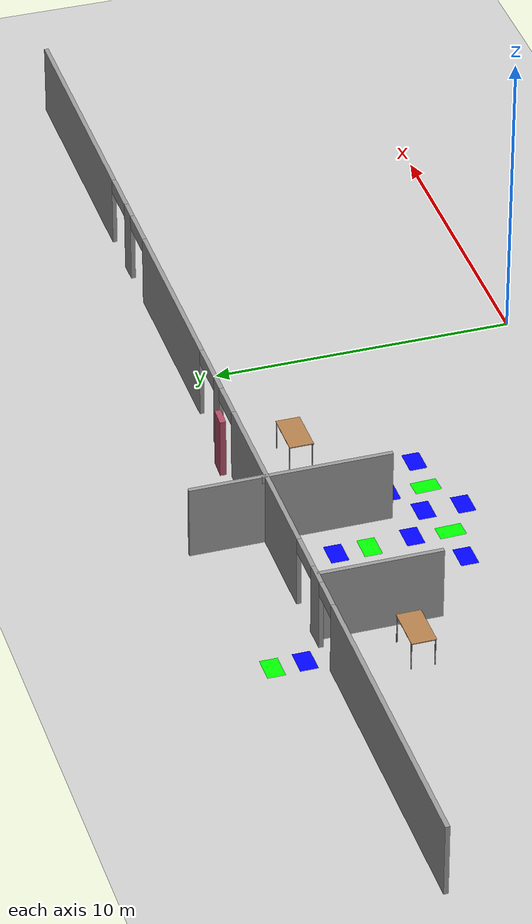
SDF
<sdf version="1.6">
 <world name="default">
  <model name="ground_plane">
   <pose>0 0 0.001 0 -0 0</pose>
   <static>1</static>
   <link name="link">
    <collision name="collision">
     <geometry><plane><normal>0 0 1</normal><size>100 100</size></plane></geometry>
     <surface><friction><ode><mu>100</mu><mu2>50</mu2></ode></friction></surface>
    </collision>
    <visual name="visual">
     <cast_shadows>0</cast_shadows>
     <geometry><plane><normal>0 0 1</normal><size>100 100</size></plane></geometry>
     <material>
      <script><uri>file://media/materials/scripts/gazebo.material</uri><name>Gazebo/Grey</name></script>
     </material>
    </visual>
   </link>
  </model>
  <model name="table_2">
   <static>1</static>
   <link name="link">
    <collision name="surface">
     <pose>0 0 1 0 -0 0</pose>
     <geometry><box><size>1.5 0.8 0.03</size></box></geometry>
     <surface><friction><ode><mu>0.6</mu><mu2>0.6</mu2></ode></friction></surface>
    </collision>
    <visual name="visual1">
     <pose>0 0 1 0 -0 0</pose>
     <geometry><box><size>1.5 0.8 0.03</size></box></geometry>
     <material>
      <script><uri>file://media/materials/scripts/gazebo.material</uri><name>Gazebo/Wood</name></script>
     </material>
    </visual>
    <collision name="front_left_leg">
     <pose>0.68 0.38 0.5 0 -0 0</pose>
     <geometry><cylinder><radius>0.02</radius><length>1</length></cylinder></geometry>
    </collision>
    <visual name="front_left_leg">
     <pose>0.68 0.38 0.5 0 -0 0</pose>
     <geometry><cylinder><radius>0.02</radius><length>1</length></cylinder></geometry>
     <material>
      <script><uri>file://media/materials/scripts/gazebo.material</uri><name>Gazebo/Grey</name></script>
     </material>
    </visual>
    <collision name="front_right_leg">
     <pose>0.68 -0.38 0.5 0 -0 0</pose>
     <geometry><cylinder><radius>0.02</radius><length>1</length></cylinder></geometry>
    </collision>
    <visual name="front_right_leg">
     <pose>0.68 -0.38 0.5 0 -0 0</pose>
     <geometry><cylinder><radius>0.02</radius><length>1</length></cylinder></geometry>
     <material>
      <script><uri>file://media/materials/scripts/gazebo.material</uri><name>Gazebo/Grey</name></script>
     </material>
    </visual>
    <collision name="back_right_leg">
     <pose>-0.68 -0.38 0.5 0 -0 0</pose>
     <geometry><cylinder><radius>0.02</radius><length>1</length></cylinder></geometry>
    </collision>
    <visual name="back_right_leg">
     <pose>-0.68 -0.38 0.5 0 -0 0</pose>
     <geometry><cylinder><radius>0.02</radius><length>1</length></cylinder></geometry>
     <material>
      <script><uri>file://media/materials/scripts/gazebo.material</uri><name>Gazebo/Grey</name></script>
     </material>
    </visual>
    <collision name="back_left_leg">
     <pose>-0.68 0.38 0.5 0 -0 0</pose>
     <geometry><cylinder><radius>0.02</radius><length>1</length></cylinder></geometry>
    </collision>
    <visual name="back_left_leg">
     <pose>-0.68 0.38 0.5 0 -0 0</pose>
     <geometry><cylinder><radius>0.02</radius><length>1</length></cylinder></geometry>
     <material>
      <script><uri>file://media/materials/scripts/gazebo.material</uri><name>Gazebo/Grey</name></script>
     </material>
    </visual>
   </link>
   <pose>-15.5399 8.3596 0.001 0 -0 0</pose>
  </model>
  <model name="table_4">
   <static>1</static>
   <link name="link">
    <collision name="surface">
     <pose>0 0 1 0 -0 0</pose>
     <geometry><box><size>1.5 0.8 0.03</size></box></geometry>
     <surface><friction><ode><mu>0.6</mu><mu2>0.6</mu2></ode></friction></surface>
    </collision>
    <visual name="visual1">
     <pose>0 0 1 0 -0 0</pose>
     <geometry><box><size>1.5 0.8 0.03</size></box></geometry>
     <material>
      <script><uri>file://media/materials/scripts/gazebo.material</uri><name>Gazebo/Wood</name></script>
     </material>
    </visual>
    <collision name="front_left_leg">
     <pose>0.68 0.38 0.5 0 -0 0</pose>
     <geometry><cylinder><radius>0.02</radius><length>1</length></cylinder></geometry>
    </collision>
    <visual name="front_left_leg">
     <pose>0.68 0.38 0.5 0 -0 0</pose>
     <geometry><cylinder><radius>0.02</radius><length>1</length></cylinder></geometry>
     <material>
      <script><uri>file://media/materials/scripts/gazebo.material</uri><name>Gazebo/Grey</name></script>
     </material>
    </visual>
    <collision name="front_right_leg">
     <pose>0.68 -0.38 0.5 0 -0 0</pose>
     <geometry><cylinder><radius>0.02</radius><length>1</length></cylinder></geometry>
    </collision>
    <visual name="front_right_leg">
     <pose>0.68 -0.38 0.5 0 -0 0</pose>
     <geometry><cylinder><radius>0.02</radius><length>1</length></cylinder></geometry>
     <material>
      <script><uri>file://media/materials/scripts/gazebo.material</uri><name>Gazebo/Grey</name></script>
     </material>
    </visual>
    <collision name="back_right_leg">
     <pose>-0.68 -0.38 0.5 0 -0 0</pose>
     <geometry><cylinder><radius>0.02</radius><length>1</length></cylinder></geometry>
    </collision>
    <visual name="back_right_leg">
     <pose>-0.68 -0.38 0.5 0 -0 0</pose>
     <geometry><cylinder><radius>0.02</radius><length>1</length></cylinder></geometry>
     <material>
      <script><uri>file://media/materials/scripts/gazebo.material</uri><name>Gazebo/Grey</name></script>
     </material>
    </visual>
    <collision name="back_left_leg">
     <pose>-0.68 0.38 0.5 0 -0 0</pose>
     <geometry><cylinder><radius>0.02</radius><length>1</length></cylinder></geometry>
    </collision>
    <visual name="back_left_leg">
     <pose>-0.68 0.38 0.5 0 -0 0</pose>
     <geometry><cylinder><radius>0.02</radius><length>1</length></cylinder></geometry>
     <material>
      <script><uri>file://media/materials/scripts/gazebo.material</uri><name>Gazebo/Grey</name></script>
     </material>
    </visual>
   </link>
   <pose>-5.01771 8.89432 0.001 0 -0 0</pose>
  </model>
  <model name="doorInside_10">
   <link name="link">
    <pose>0.712274 -0.220649 0.216958 0 -0 0</pose>
    <inertial>
     <mass>0.840612</mass>
     <inertia>
      <ixx>0.178476</ixx>
      <ixy>0</ixy>
      <ixz>0</ixz>
      <iyy>0.140406</iyy>
      <iyz>0</iyz>
      <izz>0.102032</izz>
     </inertia>
     <pose>0 0 0.001 0 -0 0</pose>
    </inertial>
    <visual name="visual">
     <geometry><box><size>0.675678 0.198843 2.05986</size></box></geometry>
     <material>
      <script><name>Gazebo/Grey</name><uri>file://media/materials/scripts/gazebo.material</uri></script>
      <ambient>0.7 0.3 0.4 1</ambient>
      <diffuse>0.7 0.7 0.7 1</diffuse>
      <specular>0.01 0.01 0.01 1</specular>
      <emissive>1 0 0 1</emissive>
      <shader type="vertex"><normal_map>__default__</normal_map></shader>
      <lighting>0</lighting>
     </material>
     <pose>0 0 0.001 0 -0 0</pose>
    </visual>
    <collision name="collision">
     <pose>0 0 0.001 0 -0 0</pose>
     <geometry><box><size>0.675678 0.198843 2.05986</size></box></geometry>
     <surface>
      <friction>
       <ode><mu>1</mu><mu2>1</mu2><fdir1>0 0 0</fdir1><slip1>0</slip1><slip2>0</slip2></ode>
       <torsional>
        <coefficient>1</coefficient>
        <patch_radius>0</patch_radius>
        <surface_radius>0</surface_radius>
        <use_patch_radius>1</use_patch_radius>
        <ode><slip>0</slip></ode>
       </torsional>
      </friction>
      <bounce><restitution_coefficient>0</restitution_coefficient><threshold>1e+06</threshold></bounce>
      <contact>
       <collide_without_contact>0</collide_without_contact>
       <collide_without_contact_bitmask>1</collide_without_contact_bitmask>
       <collide_bitmask>1</collide_bitmask>
       <ode>
        <soft_cfm>0</soft_cfm>
        <soft_erp>0.2</soft_erp>
        <kp>1e+13</kp>
        <kd>1</kd>
        <max_vel>0.01</max_vel>
        <min_depth>0</min_depth>
       </ode>
       <bullet>
        <split_impulse>1</split_impulse>
        <split_impulse_penetration_threshold>-0.01</split_impulse_penetration_threshold>
        <soft_cfm>0</soft_cfm>
        <soft_erp>0.2</soft_erp>
        <kp>1e+13</kp>
        <kd>1</kd>
       </bullet>
      </contact>
     </surface>
    </collision>
   </link>
   <static>0</static>
   <pose>-5.58746 11.5531 0.81197 -0 -2e-06 -0.041448</pose>
  </model>
  <model name="corridor_16">
   <link name="link">
    <pose>0 0 0.001 0 -0 0</pose>
    <inertial>
     <mass>0.0352517</mass>
     <inertia>
      <ixx>0.00099707</ixx>
      <ixy>0</ixy>
      <ixz>0</ixz>
      <iyy>0.00220147</iyy>
      <iyz>0</iyz>
      <izz>0.0031692</izz>
     </inertia>
     <pose>0 0 0.001 0 -0 0</pose>
    </inertial>
    <visual name="visual">
     <geometry><box><size>0.862743 0.578289 1e-06</size></box></geometry>
     <material>
      <script><name>Gazebo/Grey</name><uri>file://media/materials/scripts/gazebo.material</uri></script>
      <ambient>0 1 0 1</ambient>
      <diffuse>0 1 0 1</diffuse>
      <specular>0 1 0 1</specular>
      <emissive>0 1 0 1</emissive>
      <shader type="vertex"><normal_map>__default__</normal_map></shader>
     </material>
     <pose>0 0 0.001 0 -0 0</pose>
    </visual>
    <collision name="collision">
     <pose>0 0 0.001 0 -0 0</pose>
     <geometry><box><size>0.862743 0.578289 0.000477</size></box></geometry>
     <surface>
      <friction>
       <ode><mu>1</mu><mu2>1</mu2><fdir1>0 0 0</fdir1><slip1>0</slip1><slip2>0</slip2></ode>
       <torsional>
        <coefficient>1</coefficient>
        <patch_radius>0</patch_radius>
        <surface_radius>0</surface_radius>
        <use_patch_radius>1</use_patch_radius>
        <ode><slip>0</slip></ode>
       </torsional>
      </friction>
      <bounce><restitution_coefficient>0</restitution_coefficient><threshold>1e+06</threshold></bounce>
      <contact>
       <collide_without_contact>0</collide_without_contact>
       <collide_without_contact_bitmask>1</collide_without_contact_bitmask>
       <collide_bitmask>1</collide_bitmask>
       <ode>
        <soft_cfm>0</soft_cfm>
        <soft_erp>0.2</soft_erp>
        <kp>1e+13</kp>
        <kd>1</kd>
        <max_vel>0.01</max_vel>
        <min_depth>0</min_depth>
       </ode>
       <bullet>
        <split_impulse>1</split_impulse>
        <split_impulse_penetration_threshold>-0.01</split_impulse_penetration_threshold>
        <soft_cfm>0</soft_cfm>
        <soft_erp>0.2</soft_erp>
        <kp>1e+13</kp>
        <kd>1</kd>
       </bullet>
      </contact>
     </surface>
    </collision>
   </link>
   <static>1</static>
   <pose>-7.66214 5.39521 0 0 0 -1.5307</pose>
  </model>
  <model name="intersection_26">
   <link name="link">
    <pose>0 0 0.001 0 -0 0</pose>
    <inertial>
     <mass>0.0352517</mass>
     <inertia>
      <ixx>0.000997067</ixx>
      <ixy>0</ixy>
      <ixz>0</ixz>
      <iyy>0.00220147</iyy>
      <iyz>0</iyz>
      <izz>0.0031692</izz>
     </inertia>
     <pose>0 0 0.001 0 -0 0</pose>
    </inertial>
    <visual name="visual">
     <geometry><box><size>0.862743 0.578289 1e-06</size></box></geometry>
     <material>
      <script><name>Gazebo/Grey</name><uri>file://media/materials/scripts/gazebo.material</uri></script>
      <ambient>0 0 1 1</ambient>
      <diffuse>0 0 1 1</diffuse>
      <specular>0 0 1 1</specular>
      <emissive>0 0 1 1</emissive>
      <shader type="vertex"><normal_map>__default__</normal_map></shader>
     </material>
     <pose>0 0 0.001 0 -0 0</pose>
    </visual>
    <collision name="collision">
     <pose>0 0 0.001 0 -0 0</pose>
     <geometry><box><size>0.862743 0.578289 0.000477</size></box></geometry>
     <surface>
      <friction>
       <ode><mu>1</mu><mu2>1</mu2><fdir1>0 0 0</fdir1><slip1>0</slip1><slip2>0</slip2></ode>
       <torsional>
        <coefficient>1</coefficient>
        <patch_radius>0</patch_radius>
        <surface_radius>0</surface_radius>
        <use_patch_radius>1</use_patch_radius>
        <ode><slip>0</slip></ode>
       </torsional>
      </friction>
      <bounce><restitution_coefficient>0</restitution_coefficient><threshold>1e+06</threshold></bounce>
      <contact>
       <collide_without_contact>0</collide_without_contact>
       <collide_without_contact_bitmask>1</collide_without_contact_bitmask>
       <collide_bitmask>1</collide_bitmask>
       <ode>
        <soft_cfm>0</soft_cfm>
        <soft_erp>0.2</soft_erp>
        <kp>1e+13</kp>
        <kd>1</kd>
        <max_vel>0.01</max_vel>
        <min_depth>0</min_depth>
       </ode>
       <bullet>
        <split_impulse>1</split_impulse>
        <split_impulse_penetration_threshold>-0.01</split_impulse_penetration_threshold>
        <soft_cfm>0</soft_cfm>
        <soft_erp>0.2</soft_erp>
        <kp>1e+13</kp>
        <kd>1</kd>
       </bullet>
      </contact>
     </surface>
    </collision>
   </link>
   <static>1</static>
   <pose>-7.62462 6.63355 0 0 -0 0</pose>
  </model>
  <model name="corridor_17">
   <link name="link">
    <pose>0 0 0.001 0 -0 0</pose>
    <inertial>
     <mass>0.0352517</mass>
     <inertia>
      <ixx>0.00099707</ixx>
      <ixy>0</ixy>
      <ixz>0</ixz>
      <iyy>0.00220147</iyy>
      <iyz>0</iyz>
      <izz>0.0031692</izz>
     </inertia>
     <pose>0 0 0.001 0 -0 0</pose>
    </inertial>
    <visual name="visual">
     <geometry><box><size>0.862743 0.578289 1e-06</size></box></geometry>
     <material>
      <script><name>Gazebo/Grey</name><uri>file://media/materials/scripts/gazebo.material</uri></script>
      <ambient>0 1 0 1</ambient>
      <diffuse>0 1 0 1</diffuse>
      <specular>0 1 0 1</specular>
      <emissive>0 1 0 1</emissive>
      <shader type="vertex"><normal_map>__default__</normal_map></shader>
     </material>
     <pose>0 0 0.001 0 -0 0</pose>
    </visual>
    <collision name="collision">
     <pose>0 0 0.001 0 -0 0</pose>
     <geometry><box><size>0.862743 0.578289 0.000477</size></box></geometry>
     <surface>
      <friction>
       <ode><mu>1</mu><mu2>1</mu2><fdir1>0 0 0</fdir1><slip1>0</slip1><slip2>0</slip2></ode>
       <torsional>
        <coefficient>1</coefficient>
        <patch_radius>0</patch_radius>
        <surface_radius>0</surface_radius>
        <use_patch_radius>1</use_patch_radius>
        <ode><slip>0</slip></ode>
       </torsional>
      </friction>
      <bounce><restitution_coefficient>0</restitution_coefficient><threshold>1e+06</threshold></bounce>
      <contact>
       <collide_without_contact>0</collide_without_contact>
       <collide_without_contact_bitmask>1</collide_without_contact_bitmask>
       <collide_bitmask>1</collide_bitmask>
       <ode>
        <soft_cfm>0</soft_cfm>
        <soft_erp>0.2</soft_erp>
        <kp>1e+13</kp>
        <kd>1</kd>
        <max_vel>0.01</max_vel>
        <min_depth>0</min_depth>
       </ode>
       <bullet>
        <split_impulse>1</split_impulse>
        <split_impulse_penetration_threshold>-0.01</split_impulse_penetration_threshold>
        <soft_cfm>0</soft_cfm>
        <soft_erp>0.2</soft_erp>
        <kp>1e+13</kp>
        <kd>1</kd>
       </bullet>
      </contact>
     </surface>
    </collision>
   </link>
   <static>1</static>
   <pose>-10.0982 5.39888 0 0 -0 1.60177</pose>
  </model>
  <model name="intersection_27">
   <link name="link">
    <pose>0 0 0.001 0 -0 0</pose>
    <inertial>
     <mass>0.0352517</mass>
     <inertia>
      <ixx>0.000997067</ixx>
      <ixy>0</ixy>
      <ixz>0</ixz>
      <iyy>0.00220147</iyy>
      <iyz>0</iyz>
      <izz>0.0031692</izz>
     </inertia>
     <pose>0 0 0.001 0 -0 0</pose>
    </inertial>
    <visual name="visual">
     <geometry><box><size>0.862743 0.578289 1e-06</size></box></geometry>
     <material>
      <script><name>Gazebo/Grey</name><uri>file://media/materials/scripts/gazebo.material</uri></script>
      <ambient>0 0 1 1</ambient>
      <diffuse>0 0 1 1</diffuse>
      <specular>0 0 1 1</specular>
      <emissive>0 0 1 1</emissive>
      <shader type="vertex"><normal_map>__default__</normal_map></shader>
     </material>
     <pose>0 0 0.001 0 -0 0</pose>
    </visual>
    <collision name="collision">
     <pose>0 0 0.001 0 -0 0</pose>
     <geometry><box><size>0.862743 0.578289 0.000477</size></box></geometry>
     <surface>
      <friction>
       <ode><mu>1</mu><mu2>1</mu2><fdir1>0 0 0</fdir1><slip1>0</slip1><slip2>0</slip2></ode>
       <torsional>
        <coefficient>1</coefficient>
        <patch_radius>0</patch_radius>
        <surface_radius>0</surface_radius>
        <use_patch_radius>1</use_patch_radius>
        <ode><slip>0</slip></ode>
       </torsional>
      </friction>
      <bounce><restitution_coefficient>0</restitution_coefficient><threshold>1e+06</threshold></bounce>
      <contact>
       <collide_without_contact>0</collide_without_contact>
       <collide_without_contact_bitmask>1</collide_without_contact_bitmask>
       <collide_bitmask>1</collide_bitmask>
       <ode>
        <soft_cfm>0</soft_cfm>
        <soft_erp>0.2</soft_erp>
        <kp>1e+13</kp>
        <kd>1</kd>
        <max_vel>0.01</max_vel>
        <min_depth>0</min_depth>
       </ode>
       <bullet>
        <split_impulse>1</split_impulse>
        <split_impulse_penetration_threshold>-0.01</split_impulse_penetration_threshold>
        <soft_cfm>0</soft_cfm>
        <soft_erp>0.2</soft_erp>
        <kp>1e+13</kp>
        <kd>1</kd>
       </bullet>
      </contact>
     </surface>
    </collision>
   </link>
   <static>1</static>
   <pose>-10.0097 6.62991 0 0 -0 0</pose>
  </model>
  <model name="intersection_43">
   <link name="link">
    <pose>0 0 0.001 0 -0 0</pose>
    <inertial>
     <mass>0.0352517</mass>
     <inertia>
      <ixx>0.000997067</ixx>
      <ixy>0</ixy>
      <ixz>0</ixz>
      <iyy>0.00220147</iyy>
      <iyz>0</iyz>
      <izz>0.0031692</izz>
     </inertia>
     <pose>0 0 0.001 0 -0 0</pose>
    </inertial>
    <visual name="visual">
     <geometry><box><size>0.862743 0.578289 1e-06</size></box></geometry>
     <material>
      <script><name>Gazebo/Grey</name><uri>file://media/materials/scripts/gazebo.material</uri></script>
      <ambient>0 0 1 1</ambient>
      <diffuse>0 0 1 1</diffuse>
      <specular>0 0 1 1</specular>
      <emissive>0 0 1 1</emissive>
      <shader type="vertex"><normal_map>__default__</normal_map></shader>
     </material>
     <pose>0 0 0.001 0 -0 0</pose>
    </visual>
    <collision name="collision">
     <pose>0 0 0.001 0 -0 0</pose>
     <geometry><box><size>0.862743 0.578289 0.000477</size></box></geometry>
     <surface>
      <friction>
       <ode><mu>1</mu><mu2>1</mu2><fdir1>0 0 0</fdir1><slip1>0</slip1><slip2>0</slip2></ode>
       <torsional>
        <coefficient>1</coefficient>
        <patch_radius>0</patch_radius>
        <surface_radius>0</surface_radius>
        <use_patch_radius>1</use_patch_radius>
        <ode><slip>0</slip></ode>
       </torsional>
      </friction>
      <bounce><restitution_coefficient>0</restitution_coefficient><threshold>1e+06</threshold></bounce>
      <contact>
       <collide_without_contact>0</collide_without_contact>
       <collide_without_contact_bitmask>1</collide_without_contact_bitmask>
       <collide_bitmask>1</collide_bitmask>
       <ode>
        <soft_cfm>0</soft_cfm>
        <soft_erp>0.2</soft_erp>
        <kp>1e+13</kp>
        <kd>1</kd>
        <max_vel>0.01</max_vel>
        <min_depth>0</min_depth>
       </ode>
       <bullet>
        <split_impulse>1</split_impulse>
        <split_impulse_penetration_threshold>-0.01</split_impulse_penetration_threshold>
        <soft_cfm>0</soft_cfm>
        <soft_erp>0.2</soft_erp>
        <kp>1e+13</kp>
        <kd>1</kd>
       </bullet>
      </contact>
     </surface>
    </collision>
   </link>
   <static>1</static>
   <pose>-11.4534 5.36334 0 0 -0 0</pose>
  </model>
  <model name="intersection_44">
   <link name="link">
    <pose>0 0 0.001 0 -0 0</pose>
    <inertial>
     <mass>0.0352517</mass>
     <inertia>
      <ixx>0.000997067</ixx>
      <ixy>0</ixy>
      <ixz>0</ixz>
      <iyy>0.00220147</iyy>
      <iyz>0</iyz>
      <izz>0.0031692</izz>
     </inertia>
     <pose>0 0 0.001 0 -0 0</pose>
    </inertial>
    <visual name="visual">
     <geometry><box><size>0.862743 0.578289 1e-06</size></box></geometry>
     <material>
      <script><name>Gazebo/Grey</name><uri>file://media/materials/scripts/gazebo.material</uri></script>
      <ambient>0 0 1 1</ambient>
      <diffuse>0 0 1 1</diffuse>
      <specular>0 0 1 1</specular>
      <emissive>0 0 1 1</emissive>
      <shader type="vertex"><normal_map>__default__</normal_map></shader>
     </material>
     <pose>0 0 0.001 0 -0 0</pose>
    </visual>
    <collision name="collision">
     <pose>0 0 0.001 0 -0 0</pose>
     <geometry><box><size>0.862743 0.578289 0.000477</size></box></geometry>
     <surface>
      <friction>
       <ode><mu>1</mu><mu2>1</mu2><fdir1>0 0 0</fdir1><slip1>0</slip1><slip2>0</slip2></ode>
       <torsional>
        <coefficient>1</coefficient>
        <patch_radius>0</patch_radius>
        <surface_radius>0</surface_radius>
        <use_patch_radius>1</use_patch_radius>
        <ode><slip>0</slip></ode>
       </torsional>
      </friction>
      <bounce><restitution_coefficient>0</restitution_coefficient><threshold>1e+06</threshold></bounce>
      <contact>
       <collide_without_contact>0</collide_without_contact>
       <collide_without_contact_bitmask>1</collide_without_contact_bitmask>
       <collide_bitmask>1</collide_bitmask>
       <ode>
        <soft_cfm>0</soft_cfm>
        <soft_erp>0.2</soft_erp>
        <kp>1e+13</kp>
        <kd>1</kd>
        <max_vel>0.01</max_vel>
        <min_depth>0</min_depth>
       </ode>
       <bullet>
        <split_impulse>1</split_impulse>
        <split_impulse_penetration_threshold>-0.01</split_impulse_penetration_threshold>
        <soft_cfm>0</soft_cfm>
        <soft_erp>0.2</soft_erp>
        <kp>1e+13</kp>
        <kd>1</kd>
       </bullet>
      </contact>
     </surface>
    </collision>
   </link>
   <static>1</static>
   <pose>-8.88845 4.57012 0 0 -0 0</pose>
  </model>
  <model name="intersection">
   <link name="link">
    <pose>0 0 0.001 0 -0 0</pose>
    <inertial>
     <mass>0.0352517</mass>
     <inertia>
      <ixx>0.000997067</ixx>
      <ixy>0</ixy>
      <ixz>0</ixz>
      <iyy>0.00220147</iyy>
      <iyz>0</iyz>
      <izz>0.0031692</izz>
     </inertia>
     <pose>0 0 0.001 0 -0 0</pose>
    </inertial>
    <visual name="visual">
     <geometry><box><size>0.862743 0.578289 1e-06</size></box></geometry>
     <material>
      <script><name>Gazebo/Grey</name><uri>file://media/materials/scripts/gazebo.material</uri></script>
      <ambient>0 0 1 1</ambient>
      <diffuse>0 0 1 1</diffuse>
      <specular>0 0 1 1</specular>
      <emissive>0 0 1 1</emissive>
      <shader type="vertex"><normal_map>__default__</normal_map></shader>
     </material>
     <pose>0 0 0.001 0 -0 0</pose>
    </visual>
    <collision name="collision">
     <pose>0 0 0.001 0 -0 0</pose>
     <geometry><box><size>0.862743 0.578289 0.000477</size></box></geometry>
     <surface>
      <friction>
       <ode><mu>1</mu><mu2>1</mu2><fdir1>0 0 0</fdir1><slip1>0</slip1><slip2>0</slip2></ode>
       <torsional>
        <coefficient>1</coefficient>
        <patch_radius>0</patch_radius>
        <surface_radius>0</surface_radius>
        <use_patch_radius>1</use_patch_radius>
        <ode><slip>0</slip></ode>
       </torsional>
      </friction>
      <bounce><restitution_coefficient>0</restitution_coefficient><threshold>1e+06</threshold></bounce>
      <contact>
       <collide_without_contact>0</collide_without_contact>
       <collide_without_contact_bitmask>1</collide_without_contact_bitmask>
       <collide_bitmask>1</collide_bitmask>
       <ode>
        <soft_cfm>0</soft_cfm>
        <soft_erp>0.2</soft_erp>
        <kp>1e+13</kp>
        <kd>1</kd>
        <max_vel>0.01</max_vel>
        <min_depth>0</min_depth>
       </ode>
       <bullet>
        <split_impulse>1</split_impulse>
        <split_impulse_penetration_threshold>-0.01</split_impulse_penetration_threshold>
        <soft_cfm>0</soft_cfm>
        <soft_erp>0.2</soft_erp>
        <kp>1e+13</kp>
        <kd>1</kd>
       </bullet>
      </contact>
     </surface>
    </collision>
   </link>
   <static>1</static>
   <pose>-6.31746 5.32142 0 0 -0 0</pose>
  </model>
  <model name="Se1_cut">
   <pose>3.62364 13.9276 0 0 -0 0</pose>
   <link name="Wall_12">
    <pose>-8.15027 -2.91919 0 0 -0 0</pose>
    <visual name="Wall_12_Visual_0">
     <pose>-16.3333 0 1.25 0 -0 0</pose>
     <geometry><box><size>10.5834 0.15 2.5</size></box></geometry>
     <material>
      <script><uri>file://media/materials/scripts/gazebo.material</uri><name>Gazebo/Grey</name></script>
      <ambient>1 1 1 1</ambient>
     </material>
    </visual>
    <collision name="Wall_12_Collision_0">
     <geometry><box><size>10.5834 0.15 2.5</size></box></geometry>
     <pose>-16.3333 0 1.25 0 -0 0</pose>
    </collision>
    <visual name="Wall_12_Visual_1">
     <pose>-9.48534 0 1.25 0 -0 0</pose>
     <geometry><box><size>0.82277 0.15 2.5</size></box></geometry>
     <material>
      <script><uri>file://media/materials/scripts/gazebo.material</uri><name>Gazebo/Grey</name></script>
      <ambient>1 1 1 1</ambient>
     </material>
    </visual>
    <collision name="Wall_12_Collision_1">
     <geometry><box><size>0.82277 0.15 2.5</size></box></geometry>
     <pose>-9.48534 0 1.25 0 -0 0</pose>
    </collision>
    <visual name="Wall_12_Visual_2">
     <pose>-4.24018 0 1.25 0 -0 0</pose>
     <geometry><box><size>6.85313 0.15 2.5</size></box></geometry>
     <material>
      <script><uri>file://media/materials/scripts/gazebo.material</uri><name>Gazebo/Grey</name></script>
      <ambient>1 1 1 1</ambient>
     </material>
    </visual>
    <collision name="Wall_12_Collision_2">
     <geometry><box><size>6.85313 0.15 2.5</size></box></geometry>
     <pose>-4.24018 0 1.25 0 -0 0</pose>
    </collision>
    <visual name="Wall_12_Visual_3">
     <pose>0.816046 0 1.25 0 -0 0</pose>
     <geometry><box><size>0.62662 0.15 2.5</size></box></geometry>
     <material>
      <script><uri>file://media/materials/scripts/gazebo.material</uri><name>Gazebo/Grey</name></script>
      <ambient>1 1 1 1</ambient>
     </material>
    </visual>
    <collision name="Wall_12_Collision_3">
     <geometry><box><size>0.62662 0.15 2.5</size></box></geometry>
     <pose>0.816046 0 1.25 0 -0 0</pose>
    </collision>
    <visual name="Wall_12_Visual_4">
     <pose>5.98559 0 1.25 0 -0 0</pose>
     <geometry><box><size>6.61716 0.15 2.5</size></box></geometry>
     <material>
      <script><uri>file://media/materials/scripts/gazebo.material</uri><name>Gazebo/Grey</name></script>
      <ambient>1 1 1 1</ambient>
     </material>
    </visual>
    <collision name="Wall_12_Collision_4">
     <geometry><box><size>6.61716 0.15 2.5</size></box></geometry>
     <pose>5.98559 0 1.25 0 -0 0</pose>
    </collision>
    <visual name="Wall_12_Visual_5">
     <pose>11.0915 0 1.25 0 -0 0</pose>
     <geometry><box><size>0.730708 0.15 2.5</size></box></geometry>
     <material>
      <script><uri>file://media/materials/scripts/gazebo.material</uri><name>Gazebo/Grey</name></script>
      <ambient>1 1 1 1</ambient>
     </material>
    </visual>
    <collision name="Wall_12_Collision_5">
     <geometry><box><size>0.730708 0.15 2.5</size></box></geometry>
     <pose>11.0915 0 1.25 0 -0 0</pose>
    </collision>
    <visual name="Wall_12_Visual_6">
     <pose>17.3032 0 1.25 0 -0 0</pose>
     <geometry><box><size>8.64359 0.15 2.5</size></box></geometry>
     <material>
      <script><uri>file://media/materials/scripts/gazebo.material</uri><name>Gazebo/Grey</name></script>
      <ambient>1 1 1 1</ambient>
     </material>
    </visual>
    <collision name="Wall_12_Collision_6">
     <geometry><box><size>8.64359 0.15 2.5</size></box></geometry>
     <pose>17.3032 0 1.25 0 -0 0</pose>
    </collision>
    <visual name="Wall_12_Visual_7">
     <pose>-10.4692 0 2.25 0 -0 0</pose>
     <geometry><box><size>1.14486 0.15 0.5</size></box></geometry>
     <material>
      <script><uri>file://media/materials/scripts/gazebo.material</uri><name>Gazebo/Grey</name></script>
      <ambient>1 1 1 1</ambient>
     </material>
    </visual>
    <collision name="Wall_12_Collision_7">
     <geometry><box><size>1.14486 0.15 0.5</size></box></geometry>
     <pose>-10.4692 0 2.25 0 -0 0</pose>
    </collision>
    <visual name="Wall_12_Visual_8">
     <pose>-8.37035 0 2.25 0 -0 0</pose>
     <geometry><box><size>1.40721 0.15 0.5</size></box></geometry>
     <material>
      <script><uri>file://media/materials/scripts/gazebo.material</uri><name>Gazebo/Grey</name></script>
      <ambient>1 1 1 1</ambient>
     </material>
    </visual>
    <collision name="Wall_12_Collision_8">
     <geometry><box><size>1.40721 0.15 0.5</size></box></geometry>
     <pose>-8.37035 0 2.25 0 -0 0</pose>
    </collision>
    <visual name="Wall_12_Visual_9">
     <pose>-0.155439 0 2.25 0 -0 0</pose>
     <geometry><box><size>1.31635 0.15 0.5</size></box></geometry>
     <material>
      <script><uri>file://media/materials/scripts/gazebo.material</uri><name>Gazebo/Grey</name></script>
      <ambient>1 1 1 1</ambient>
     </material>
    </visual>
    <collision name="Wall_12_Collision_9">
     <geometry><box><size>1.31635 0.15 0.5</size></box></geometry>
     <pose>-0.155439 0 2.25 0 -0 0</pose>
    </collision>
    <visual name="Wall_12_Visual_10">
     <pose>1.90318 0 2.25 0 -0 0</pose>
     <geometry><box><size>1.54766 0.15 0.5</size></box></geometry>
     <material>
      <script><uri>file://media/materials/scripts/gazebo.material</uri><name>Gazebo/Grey</name></script>
      <ambient>1 1 1 1</ambient>
     </material>
    </visual>
    <collision name="Wall_12_Collision_10">
     <geometry><box><size>1.54766 0.15 0.5</size></box></geometry>
     <pose>1.90318 0 2.25 0 -0 0</pose>
    </collision>
    <visual name="Wall_12_Visual_11">
     <pose>10.0102 0 2.25 0 -0 0</pose>
     <geometry><box><size>1.432 0.15 0.5</size></box></geometry>
     <material>
      <script><uri>file://media/materials/scripts/gazebo.material</uri><name>Gazebo/Grey</name></script>
      <ambient>1 1 1 1</ambient>
     </material>
    </visual>
    <collision name="Wall_12_Collision_11">
     <geometry><box><size>1.432 0.15 0.5</size></box></geometry>
     <pose>10.0102 0 2.25 0 -0 0</pose>
    </collision>
    <visual name="Wall_12_Visual_12">
     <pose>12.2191 0 2.25 0 -0 0</pose>
     <geometry><box><size>1.52453 0.15 0.5</size></box></geometry>
     <material>
      <script><uri>file://media/materials/scripts/gazebo.material</uri><name>Gazebo/Grey</name></script>
      <ambient>1 1 1 1</ambient>
     </material>
    </visual>
    <collision name="Wall_12_Collision_12">
     <geometry><box><size>1.52453 0.15 0.5</size></box></geometry>
     <pose>12.2191 0 2.25 0 -0 0</pose>
    </collision>
   </link>
   <link name="Wall_29">
    <collision name="Wall_29_Collision">
     <geometry><box><size>2.5 0.15 2.5</size></box></geometry>
     <pose>0 0 1.25 0 -0 0</pose>
    </collision>
    <visual name="Wall_29_Visual">
     <pose>0 0 1.25 0 -0 0</pose>
     <geometry><box><size>2.5 0.15 2.5</size></box></geometry>
     <material>
      <script><uri>file://media/materials/scripts/gazebo.material</uri><name>Gazebo/Grey</name></script>
      <ambient>1 1 1 1</ambient>
     </material>
    </visual>
    <pose>-12.471 -1.66352 0 0 0 -1.5708</pose>
   </link>
   <link name="Wall_89">
    <collision name="Wall_89_Collision">
     <geometry><box><size>4 0.15 2.5</size></box></geometry>
     <pose>0 0 1.25 0 -0 0</pose>
    </collision>
    <visual name="Wall_89_Visual">
     <pose>0 0 1.25 0 -0 0</pose>
     <geometry><box><size>4 0.15 2.5</size></box></geometry>
     <material>
      <script><uri>file://media/materials/scripts/gazebo.material</uri><name>Gazebo/Grey</name></script>
      <ambient>1 1 1 1</ambient>
     </material>
    </visual>
    <pose>-17.6091 -4.94228 0 0 0 -1.5708</pose>
   </link>
   <link name="Wall_91">
    <collision name="Wall_91_Collision">
     <geometry><box><size>4.25 0.15 2.5</size></box></geometry>
     <pose>0 0 1.25 0 -0 0</pose>
    </collision>
    <visual name="Wall_91_Visual">
     <pose>0 0 1.25 0 -0 0</pose>
     <geometry><box><size>4.25 0.15 2.5</size></box></geometry>
     <material>
      <script><uri>file://media/materials/scripts/gazebo.material</uri><name>Gazebo/Grey</name></script>
      <ambient>1 1 1 1</ambient>
     </material>
    </visual>
    <pose>-12.471 -4.88852 0 0 0 -1.5708</pose>
   </link>
   <static>1</static>
  </model>
  <model name="intersection_60">
   <link name="link">
    <pose>0 0 0.001 0 -0 0</pose>
    <inertial>
     <mass>0.0352517</mass>
     <inertia>
      <ixx>0.000997067</ixx>
      <ixy>0</ixy>
      <ixz>0</ixz>
      <iyy>0.00220147</iyy>
      <iyz>0</iyz>
      <izz>0.0031692</izz>
     </inertia>
     <pose>0 0 0.001 0 -0 0</pose>
    </inertial>
    <visual name="visual">
     <geometry><box><size>0.862743 0.578289 1e-06</size></box></geometry>
     <material>
      <script><name>Gazebo/Grey</name><uri>file://media/materials/scripts/gazebo.material</uri></script>
      <ambient>0 0 1 1</ambient>
      <diffuse>0 0 1 1</diffuse>
      <specular>0 0 1 1</specular>
      <emissive>0 0 1 1</emissive>
      <shader type="vertex"><normal_map>__default__</normal_map></shader>
     </material>
     <pose>0 0 0.001 0 -0 0</pose>
    </visual>
    <collision name="collision">
     <pose>0 0 0.001 0 -0 0</pose>
     <geometry><box><size>0.862743 0.578289 0.000477</size></box></geometry>
     <surface>
      <friction>
       <ode><mu>1</mu><mu2>1</mu2><fdir1>0 0 0</fdir1><slip1>0</slip1><slip2>0</slip2></ode>
       <torsional>
        <coefficient>1</coefficient>
        <patch_radius>0</patch_radius>
        <surface_radius>0</surface_radius>
        <use_patch_radius>1</use_patch_radius>
        <ode><slip>0</slip></ode>
       </torsional>
      </friction>
      <bounce><restitution_coefficient>0</restitution_coefficient><threshold>1e+06</threshold></bounce>
      <contact>
       <collide_without_contact>0</collide_without_contact>
       <collide_without_contact_bitmask>1</collide_without_contact_bitmask>
       <collide_bitmask>1</collide_bitmask>
       <ode>
        <soft_cfm>0</soft_cfm>
        <soft_erp>0.2</soft_erp>
        <kp>1e+13</kp>
        <kd>1</kd>
        <max_vel>0.01</max_vel>
        <min_depth>0</min_depth>
       </ode>
       <bullet>
        <split_impulse>1</split_impulse>
        <split_impulse_penetration_threshold>-0.01</split_impulse_penetration_threshold>
        <soft_cfm>0</soft_cfm>
        <soft_erp>0.2</soft_erp>
        <kp>1e+13</kp>
        <kd>1</kd>
       </bullet>
      </contact>
     </surface>
    </collision>
   </link>
   <static>1</static>
   <pose>-14.9264 11.663 0 0 -0 0</pose>
  </model>
  <model name="intersection_62">
   <link name="link">
    <pose>0 0 0.001 0 -0 0</pose>
    <inertial>
     <mass>0.0352517</mass>
     <inertia>
      <ixx>0.000997067</ixx>
      <ixy>0</ixy>
      <ixz>0</ixz>
      <iyy>0.00220147</iyy>
      <iyz>0</iyz>
      <izz>0.0031692</izz>
     </inertia>
     <pose>0 0 0.001 0 -0 0</pose>
    </inertial>
    <visual name="visual">
     <geometry><box><size>0.862743 0.578289 1e-06</size></box></geometry>
     <material>
      <script><name>Gazebo/Grey</name><uri>file://media/materials/scripts/gazebo.material</uri></script>
      <ambient>0 0 1 1</ambient>
      <diffuse>0 0 1 1</diffuse>
      <specular>0 0 1 1</specular>
      <emissive>0 0 1 1</emissive>
      <shader type="vertex"><normal_map>__default__</normal_map></shader>
     </material>
     <pose>0 0 0.001 0 -0 0</pose>
    </visual>
    <collision name="collision">
     <pose>0 0 0.001 0 -0 0</pose>
     <geometry><box><size>0.862743 0.578289 0.000477</size></box></geometry>
     <surface>
      <friction>
       <ode><mu>1</mu><mu2>1</mu2><fdir1>0 0 0</fdir1><slip1>0</slip1><slip2>0</slip2></ode>
       <torsional>
        <coefficient>1</coefficient>
        <patch_radius>0</patch_radius>
        <surface_radius>0</surface_radius>
        <use_patch_radius>1</use_patch_radius>
        <ode><slip>0</slip></ode>
       </torsional>
      </friction>
      <bounce><restitution_coefficient>0</restitution_coefficient><threshold>1e+06</threshold></bounce>
      <contact>
       <collide_without_contact>0</collide_without_contact>
       <collide_without_contact_bitmask>1</collide_without_contact_bitmask>
       <collide_bitmask>1</collide_bitmask>
       <ode>
        <soft_cfm>0</soft_cfm>
        <soft_erp>0.2</soft_erp>
        <kp>1e+13</kp>
        <kd>1</kd>
        <max_vel>0.01</max_vel>
        <min_depth>0</min_depth>
       </ode>
       <bullet>
        <split_impulse>1</split_impulse>
        <split_impulse_penetration_threshold>-0.01</split_impulse_penetration_threshold>
        <soft_cfm>0</soft_cfm>
        <soft_erp>0.2</soft_erp>
        <kp>1e+13</kp>
        <kd>1</kd>
       </bullet>
      </contact>
     </surface>
    </collision>
   </link>
   <static>1</static>
   <pose>-10.1458 9.14908 0 0 -0 0</pose>
  </model>
  <model name="intersection_63">
   <link name="link">
    <pose>0 0 0.001 0 -0 0</pose>
    <inertial>
     <mass>0.0352517</mass>
     <inertia>
      <ixx>0.000997067</ixx>
      <ixy>0</ixy>
      <ixz>0</ixz>
      <iyy>0.00220147</iyy>
      <iyz>0</iyz>
      <izz>0.0031692</izz>
     </inertia>
     <pose>0 0 0.001 0 -0 0</pose>
    </inertial>
    <visual name="visual">
     <geometry><box><size>0.862743 0.578289 1e-06</size></box></geometry>
     <material>
      <script><name>Gazebo/Grey</name><uri>file://media/materials/scripts/gazebo.material</uri></script>
      <ambient>0 0 1 1</ambient>
      <diffuse>0 0 1 1</diffuse>
      <specular>0 0 1 1</specular>
      <emissive>0 0 1 1</emissive>
      <shader type="vertex"><normal_map>__default__</normal_map></shader>
     </material>
     <pose>0 0 0.001 0 -0 0</pose>
    </visual>
    <collision name="collision">
     <pose>0 0 0.001 0 -0 0</pose>
     <geometry><box><size>0.862743 0.578289 0.000477</size></box></geometry>
     <surface>
      <friction>
       <ode><mu>1</mu><mu2>1</mu2><fdir1>0 0 0</fdir1><slip1>0</slip1><slip2>0</slip2></ode>
       <torsional>
        <coefficient>1</coefficient>
        <patch_radius>0</patch_radius>
        <surface_radius>0</surface_radius>
        <use_patch_radius>1</use_patch_radius>
        <ode><slip>0</slip></ode>
       </torsional>
      </friction>
      <bounce><restitution_coefficient>0</restitution_coefficient><threshold>1e+06</threshold></bounce>
      <contact>
       <collide_without_contact>0</collide_without_contact>
       <collide_without_contact_bitmask>1</collide_without_contact_bitmask>
       <collide_bitmask>1</collide_bitmask>
       <ode>
        <soft_cfm>0</soft_cfm>
        <soft_erp>0.2</soft_erp>
        <kp>1e+13</kp>
        <kd>1</kd>
        <max_vel>0.01</max_vel>
        <min_depth>0</min_depth>
       </ode>
       <bullet>
        <split_impulse>1</split_impulse>
        <split_impulse_penetration_threshold>-0.01</split_impulse_penetration_threshold>
        <soft_cfm>0</soft_cfm>
        <soft_erp>0.2</soft_erp>
        <kp>1e+13</kp>
        <kd>1</kd>
       </bullet>
      </contact>
     </surface>
    </collision>
   </link>
   <static>1</static>
   <pose>-7.56285 9.05939 0 0 -0 0</pose>
  </model>
  <model name="intersection_74">
   <link name="link">
    <pose>0 0 0.001 0 -0 0</pose>
    <inertial>
     <mass>0.0352517</mass>
     <inertia>
      <ixx>0.000997067</ixx>
      <ixy>0</ixy>
      <ixz>0</ixz>
      <iyy>0.00220147</iyy>
      <iyz>0</iyz>
      <izz>0.0031692</izz>
     </inertia>
     <pose>0 0 0.001 0 -0 0</pose>
    </inertial>
    <visual name="visual">
     <geometry><box><size>0.862743 0.578289 1e-06</size></box></geometry>
     <material>
      <script><name>Gazebo/Grey</name><uri>file://media/materials/scripts/gazebo.material</uri></script>
      <ambient>0 0 1 1</ambient>
      <diffuse>0 0 1 1</diffuse>
      <specular>0 0 1 1</specular>
      <emissive>0 0 1 1</emissive>
      <shader type="vertex"><normal_map>__default__</normal_map></shader>
     </material>
     <pose>0 0 0.001 0 -0 0</pose>
    </visual>
    <collision name="collision">
     <pose>0 0 0.001 0 -0 0</pose>
     <geometry><box><size>0.862743 0.578289 0.000477</size></box></geometry>
     <surface>
      <friction>
       <ode><mu>1</mu><mu2>1</mu2><fdir1>0 0 0</fdir1><slip1>0</slip1><slip2>0</slip2></ode>
       <torsional>
        <coefficient>1</coefficient>
        <patch_radius>0</patch_radius>
        <surface_radius>0</surface_radius>
        <use_patch_radius>1</use_patch_radius>
        <ode><slip>0</slip></ode>
       </torsional>
      </friction>
      <bounce><restitution_coefficient>0</restitution_coefficient><threshold>1e+06</threshold></bounce>
      <contact>
       <collide_without_contact>0</collide_without_contact>
       <collide_without_contact_bitmask>1</collide_without_contact_bitmask>
       <collide_bitmask>1</collide_bitmask>
       <ode>
        <soft_cfm>0</soft_cfm>
        <soft_erp>0.2</soft_erp>
        <kp>1e+13</kp>
        <kd>1</kd>
        <max_vel>0.01</max_vel>
        <min_depth>0</min_depth>
       </ode>
       <bullet>
        <split_impulse>1</split_impulse>
        <split_impulse_penetration_threshold>-0.01</split_impulse_penetration_threshold>
        <soft_cfm>0</soft_cfm>
        <soft_erp>0.2</soft_erp>
        <kp>1e+13</kp>
        <kd>1</kd>
       </bullet>
      </contact>
     </surface>
    </collision>
   </link>
   <static>1</static>
   <pose>-8.83813 5.86306 0 0 -0 0</pose>
  </model>
  <model name="corridor_0_clone_3">
   <link name="link">
    <pose>0 0 0.001 0 -0 0</pose>
    <inertial>
     <mass>0.0352517</mass>
     <inertia>
      <ixx>0.00099707</ixx>
      <ixy>0</ixy>
      <ixz>0</ixz>
      <iyy>0.00220147</iyy>
      <iyz>0</iyz>
      <izz>0.0031692</izz>
     </inertia>
     <pose>0 0 0.001 0 -0 0</pose>
    </inertial>
    <visual name="visual">
     <geometry><box><size>0.862743 0.578289 1e-06</size></box></geometry>
     <material>
      <script><name>Gazebo/Grey</name><uri>file://media/materials/scripts/gazebo.material</uri></script>
      <ambient>0 1 0 1</ambient>
      <diffuse>0 1 0 1</diffuse>
      <specular>0 1 0 1</specular>
      <emissive>0 1 0 1</emissive>
      <shader type="vertex"><normal_map>__default__</normal_map></shader>
     </material>
     <pose>0 0 0.001 0 -0 0</pose>
    </visual>
    <collision name="collision">
     <pose>0 0 0.001 0 -0 0</pose>
     <geometry><box><size>0.862743 0.578289 0.000477</size></box></geometry>
     <surface>
      <friction>
       <ode><mu>1</mu><mu2>1</mu2><fdir1>0 0 0</fdir1><slip1>0</slip1><slip2>0</slip2></ode>
       <torsional>
        <coefficient>1</coefficient>
        <patch_radius>0</patch_radius>
        <surface_radius>0</surface_radius>
        <use_patch_radius>1</use_patch_radius>
        <ode><slip>0</slip></ode>
       </torsional>
      </friction>
      <bounce><restitution_coefficient>0</restitution_coefficient><threshold>1e+06</threshold></bounce>
      <contact>
       <collide_without_contact>0</collide_without_contact>
       <collide_without_contact_bitmask>1</collide_without_contact_bitmask>
       <collide_bitmask>1</collide_bitmask>
       <ode>
        <soft_cfm>0</soft_cfm>
        <soft_erp>0.2</soft_erp>
        <kp>1e+13</kp>
        <kd>1</kd>
        <max_vel>0.01</max_vel>
        <min_depth>0</min_depth>
       </ode>
       <bullet>
        <split_impulse>1</split_impulse>
        <split_impulse_penetration_threshold>-0.01</split_impulse_penetration_threshold>
        <soft_cfm>0</soft_cfm>
        <soft_erp>0.2</soft_erp>
        <kp>1e+13</kp>
        <kd>1</kd>
       </bullet>
      </contact>
     </surface>
    </collision>
   </link>
   <static>1</static>
   <pose>-10.1349 8.06113 0 0 -0 0</pose>
  </model>
  <model name="corridor_0_clone_4">
   <link name="link">
    <pose>0 0 0.001 0 -0 0</pose>
    <inertial>
     <mass>0.0352517</mass>
     <inertia>
      <ixx>0.00099707</ixx>
      <ixy>0</ixy>
      <ixz>0</ixz>
      <iyy>0.00220147</iyy>
      <iyz>0</iyz>
      <izz>0.0031692</izz>
     </inertia>
     <pose>0 0 0.001 0 -0 0</pose>
    </inertial>
    <visual name="visual">
     <geometry><box><size>0.862743 0.578289 1e-06</size></box></geometry>
     <material>
      <script><name>Gazebo/Grey</name><uri>file://media/materials/scripts/gazebo.material</uri></script>
      <ambient>0 1 0 1</ambient>
      <diffuse>0 1 0 1</diffuse>
      <specular>0 1 0 1</specular>
      <emissive>0 1 0 1</emissive>
      <shader type="vertex"><normal_map>__default__</normal_map></shader>
     </material>
     <pose>0 0 0.001 0 -0 0</pose>
    </visual>
    <collision name="collision">
     <pose>0 0 0.001 0 -0 0</pose>
     <geometry><box><size>0.862743 0.578289 0.000477</size></box></geometry>
     <surface>
      <friction>
       <ode><mu>1</mu><mu2>1</mu2><fdir1>0 0 0</fdir1><slip1>0</slip1><slip2>0</slip2></ode>
       <torsional>
        <coefficient>1</coefficient>
        <patch_radius>0</patch_radius>
        <surface_radius>0</surface_radius>
        <use_patch_radius>1</use_patch_radius>
        <ode><slip>0</slip></ode>
       </torsional>
      </friction>
      <bounce><restitution_coefficient>0</restitution_coefficient><threshold>1e+06</threshold></bounce>
      <contact>
       <collide_without_contact>0</collide_without_contact>
       <collide_without_contact_bitmask>1</collide_without_contact_bitmask>
       <collide_bitmask>1</collide_bitmask>
       <ode>
        <soft_cfm>0</soft_cfm>
        <soft_erp>0.2</soft_erp>
        <kp>1e+13</kp>
        <kd>1</kd>
        <max_vel>0.01</max_vel>
        <min_depth>0</min_depth>
       </ode>
       <bullet>
        <split_impulse>1</split_impulse>
        <split_impulse_penetration_threshold>-0.01</split_impulse_penetration_threshold>
        <soft_cfm>0</soft_cfm>
        <soft_erp>0.2</soft_erp>
        <kp>1e+13</kp>
        <kd>1</kd>
       </bullet>
      </contact>
     </surface>
    </collision>
   </link>
   <static>1</static>
   <pose>-7.54688 8.01483 0 0 -0 0</pose>
  </model>
  <model name="corridor_0_clone_14">
   <link name="link">
    <pose>0 0 0.001 0 -0 0</pose>
    <inertial>
     <mass>0.0352517</mass>
     <inertia>
      <ixx>0.00099707</ixx>
      <ixy>0</ixy>
      <ixz>0</ixz>
      <iyy>0.00220147</iyy>
      <iyz>0</iyz>
      <izz>0.0031692</izz>
     </inertia>
     <pose>0 0 0.001 0 -0 0</pose>
    </inertial>
    <visual name="visual">
     <geometry><box><size>0.862743 0.578289 1e-06</size></box></geometry>
     <material>
      <script><name>Gazebo/Grey</name><uri>file://media/materials/scripts/gazebo.material</uri></script>
      <ambient>0 1 0 1</ambient>
      <diffuse>0 1 0 1</diffuse>
      <specular>0 1 0 1</specular>
      <emissive>0 1 0 1</emissive>
      <shader type="vertex"><normal_map>__default__</normal_map></shader>
     </material>
     <pose>0 0 0.001 0 -0 0</pose>
    </visual>
    <collision name="collision">
     <pose>0 0 0.001 0 -0 0</pose>
     <geometry><box><size>0.862743 0.578289 0.000477</size></box></geometry>
     <surface>
      <friction>
       <ode><mu>1</mu><mu2>1</mu2><fdir1>0 0 0</fdir1><slip1>0</slip1><slip2>0</slip2></ode>
       <torsional>
        <coefficient>1</coefficient>
        <patch_radius>0</patch_radius>
        <surface_radius>0</surface_radius>
        <use_patch_radius>1</use_patch_radius>
        <ode><slip>0</slip></ode>
       </torsional>
      </friction>
      <bounce><restitution_coefficient>0</restitution_coefficient><threshold>1e+06</threshold></bounce>
      <contact>
       <collide_without_contact>0</collide_without_contact>
       <collide_without_contact_bitmask>1</collide_without_contact_bitmask>
       <collide_bitmask>1</collide_bitmask>
       <ode>
        <soft_cfm>0</soft_cfm>
        <soft_erp>0.2</soft_erp>
        <kp>1e+13</kp>
        <kd>1</kd>
        <max_vel>0.01</max_vel>
        <min_depth>0</min_depth>
       </ode>
       <bullet>
        <split_impulse>1</split_impulse>
        <split_impulse_penetration_threshold>-0.01</split_impulse_penetration_threshold>
        <soft_cfm>0</soft_cfm>
        <soft_erp>0.2</soft_erp>
        <kp>1e+13</kp>
        <kd>1</kd>
       </bullet>
      </contact>
     </surface>
    </collision>
   </link>
   <static>1</static>
   <pose>-14.9507 12.6973 0 0 -0 0</pose>
  </model>
 </world>
</sdf>
